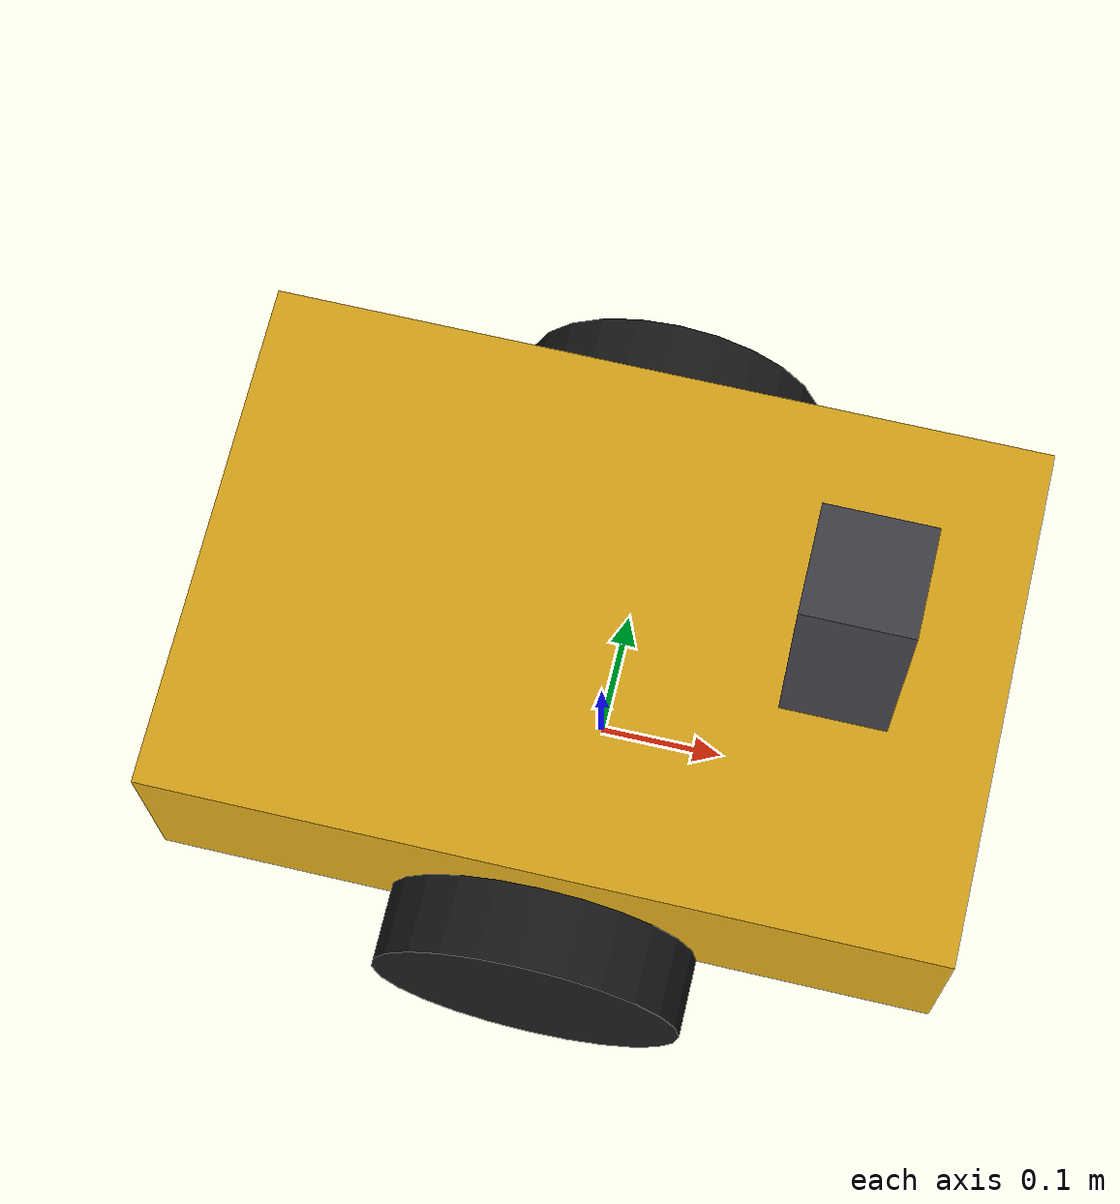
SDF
<?xml version="1.0"?>
<sdf version="1.9">
  <model name="mission_rover">
    <pose>0 0 0 0 0 0</pose>

    <link name="base_link">
      <inertial>
        <pose>0 0 0.20 0 0 0</pose>
        <mass>9.0</mass>
        <inertia>
          <ixx>0.150</ixx><ixy>0</ixy><ixz>0</ixz>
          <iyy>0.320</iyy><iyz>0</iyz>
          <izz>0.400</izz>
        </inertia>
      </inertial>

      <visual name="chassis">
        <pose>0 0 0.20 0 0 0</pose>
        <geometry><box><size>0.60 0.40 0.16</size></box></geometry>
        <material>
          <ambient>0.20 0.18 0.10 1</ambient>
          <diffuse>0.85 0.65 0.10 1</diffuse>
        </material>
      </visual>
      <visual name="mast">
        <pose>0.18 0 0.36 0 0 0</pose>
        <geometry><box><size>0.08 0.08 0.24</size></box></geometry>
        <material><diffuse>0.25 0.25 0.28 1</diffuse></material>
      </visual>
      <collision name="chassis_collision">
        <pose>0 0 0.20 0 0 0</pose>
        <geometry><box><size>0.60 0.40 0.16</size></box></geometry>
      </collision>

      <collision name="caster_front">
        <pose>0.24 0 0.06 0 0 0</pose>
        <geometry><sphere><radius>0.06</radius></sphere></geometry>
        <surface>
          <friction><ode><mu>0.0</mu><mu2>0.0</mu2></ode></friction>
        </surface>
      </collision>
      <visual name="caster_front_visual">
        <pose>0.24 0 0.06 0 0 0</pose>
        <geometry><sphere><radius>0.06</radius></sphere></geometry>
        <material><diffuse>0.2 0.2 0.2 1</diffuse></material>
      </visual>
      <collision name="caster_rear">
        <pose>-0.24 0 0.06 0 0 0</pose>
        <geometry><sphere><radius>0.06</radius></sphere></geometry>
        <surface>
          <friction><ode><mu>0.0</mu><mu2>0.0</mu2></ode></friction>
        </surface>
      </collision>
      <visual name="caster_rear_visual">
        <pose>-0.24 0 0.06 0 0 0</pose>
        <geometry><sphere><radius>0.06</radius></sphere></geometry>
        <material><diffuse>0.2 0.2 0.2 1</diffuse></material>
      </visual>

      <sensor name="front_camera" type="camera">
        <pose>0.22 0 0.55 0 0 0</pose>
        <always_on>1</always_on>
        <update_rate>6</update_rate>
        <visualize>false</visualize>
        <topic>/rover/camera/image</topic>
        <gz_frame_id>rover/camera_optical_frame</gz_frame_id>
        <camera>
          <!-- Must match rover.camera in config/mission.yaml. -->
          <horizontal_fov>1.20</horizontal_fov>
          <image>
            <width>640</width>
            <height>480</height>
            <format>R8G8B8</format>
          </image>
          <clip><near>0.05</near><far>30</far></clip>
          <optical_frame_id>rover/camera_optical_frame</optical_frame_id>
        </camera>
      </sensor>

    </link>

    <link name="left_wheel">
      <pose>0 0.23 0.12 -1.5707963 0 0</pose>
      <inertial>
        <mass>0.7</mass>
        <inertia>
          <ixx>0.0031</ixx><ixy>0</ixy><ixz>0</ixz>
          <iyy>0.0031</iyy><iyz>0</iyz>
          <izz>0.0050</izz>
        </inertia>
      </inertial>
      <visual name="visual">
        <geometry><cylinder><radius>0.12</radius><length>0.06</length></cylinder></geometry>
        <material><diffuse>0.1 0.1 0.1 1</diffuse></material>
      </visual>
      <collision name="collision">
        <geometry><cylinder><radius>0.12</radius><length>0.06</length></cylinder></geometry>
        <surface>
          <friction><ode><mu>1.2</mu><mu2>1.2</mu2></ode></friction>
        </surface>
      </collision>
    </link>

    <link name="right_wheel">
      <pose>0 -0.23 0.12 -1.5707963 0 0</pose>
      <inertial>
        <mass>0.7</mass>
        <inertia>
          <ixx>0.0031</ixx><ixy>0</ixy><ixz>0</ixz>
          <iyy>0.0031</iyy><iyz>0</iyz>
          <izz>0.0050</izz>
        </inertia>
      </inertial>
      <visual name="visual">
        <geometry><cylinder><radius>0.12</radius><length>0.06</length></cylinder></geometry>
        <material><diffuse>0.1 0.1 0.1 1</diffuse></material>
      </visual>
      <collision name="collision">
        <geometry><cylinder><radius>0.12</radius><length>0.06</length></cylinder></geometry>
        <surface>
          <friction><ode><mu>1.2</mu><mu2>1.2</mu2></ode></friction>
        </surface>
      </collision>
    </link>

    <joint name="left_wheel_joint" type="revolute">
      <parent>base_link</parent>
      <child>left_wheel</child>
      <axis>
        <xyz expressed_in="__model__">0 1 0</xyz>
        <limit><lower>-1e16</lower><upper>1e16</upper></limit>
      </axis>
    </joint>
    <joint name="right_wheel_joint" type="revolute">
      <parent>base_link</parent>
      <child>right_wheel</child>
      <axis>
        <xyz expressed_in="__model__">0 1 0</xyz>
        <limit><lower>-1e16</lower><upper>1e16</upper></limit>
      </axis>
    </joint>

    <plugin filename="gz-sim-diff-drive-system"
            name="gz::sim::systems::DiffDrive">
      <left_joint>left_wheel_joint</left_joint>
      <right_joint>right_wheel_joint</right_joint>
      <wheel_separation>0.46</wheel_separation>
      <wheel_radius>0.12</wheel_radius>
      <!-- Headroom above rover.max_linear_velocity/max_angular_velocity so the
           follower's limits bind, not the plugin's. -->
      <max_linear_acceleration>1.5</max_linear_acceleration>
      <max_angular_acceleration>4.0</max_angular_acceleration>
      <topic>/model/mission_rover/cmd_vel</topic>
      <odom_topic>/model/mission_rover/wheel_odometry</odom_topic>
      <tf_topic>/model/mission_rover/wheel_tf</tf_topic>
      <frame_id>rover/odom</frame_id>
      <child_frame_id>rover/base_link</child_frame_id>
      <odom_publish_frequency>50</odom_publish_frequency>
    </plugin>

    <plugin filename="gz-sim-odometry-publisher-system"
            name="gz::sim::systems::OdometryPublisher">
      <odom_frame>rover/odom</odom_frame>
      <robot_base_frame>rover/base_link</robot_base_frame>
      <odom_topic>/model/mission_rover/odometry</odom_topic>
      <tf_topic>/model/mission_rover/tf</tf_topic>
      <dimensions>2</dimensions>
      <odom_publish_frequency>50</odom_publish_frequency>
    </plugin>

  </model>
</sdf>
